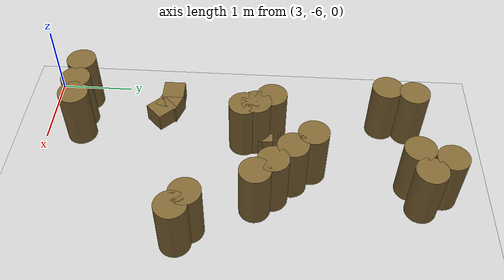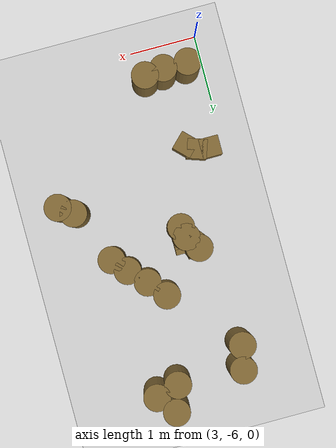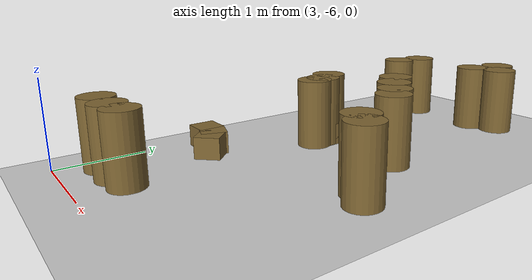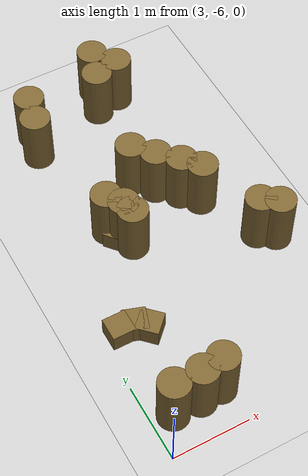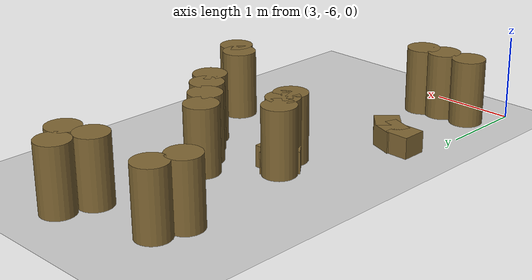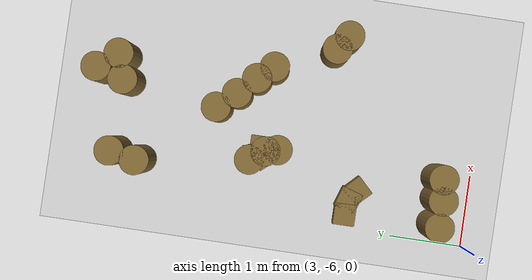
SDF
<sdf version="1.7">
 <world name="default">
  <model name="ground_plane">
   <static>1</static>
   <link name="link">
    <collision name="collision">
     <geometry><plane><normal>0 0 1</normal><size>100 100</size></plane></geometry>
     <surface><friction><ode><mu>100</mu><mu2>50</mu2></ode></friction></surface>
    </collision>
    <visual name="visual">
     <cast_shadows>0</cast_shadows>
     <geometry><plane><normal>0 0 1</normal><size>100 100</size></plane></geometry>
     <material>
      <script><uri>file://media/materials/scripts/gazebo.material</uri><name>Gazebo/Grey</name></script>
     </material>
    </visual>
   </link>
  </model>
  <model name="mini_cylinder_0_clone_0_clone_clone_clone_clone_9">
   <link name="link">
    <inertial>
     <mass>1</mass>
     <inertia><ixx>0.145833</ixx><ixy>0</ixy><ixz>0</ixz><iyy>0.145833</iyy><iyz>0</iyz><izz>0.125</izz></inertia>
    </inertial>
    <visual name="visual">
     <geometry><cylinder><radius>0.2</radius><length>0.8</length></cylinder></geometry>
     <material>
      <script><name>Gazebo/Grey</name><uri>file://media/materials/scripts/gazebo.material</uri></script>
      <shader type="vertex"><normal_map>__default__</normal_map></shader>
      <ambient>0.5 0.4 0.2 1</ambient>
      <diffuse>0.7 0.7 0.7 1</diffuse>
      <specular>0.01 0.01 0.01 1</specular>
      <emissive>0 0 0 1</emissive>
     </material>
    </visual>
    <collision name="collision">
     <geometry><cylinder><radius>0.2</radius><length>0.8</length></cylinder></geometry>
     <surface>
      <friction>
       <ode><mu>1</mu><mu2>1</mu2><fdir1>0 0 0</fdir1><slip1>0</slip1><slip2>0</slip2></ode>
       <torsional>
        <coefficient>1</coefficient>
        <patch_radius>0</patch_radius>
        <surface_radius>0</surface_radius>
        <use_patch_radius>1</use_patch_radius>
        <ode><slip>0</slip></ode>
       </torsional>
      </friction>
      <bounce><restitution_coefficient>0</restitution_coefficient><threshold>1e+06</threshold></bounce>
      <contact>
       <collide_without_contact>0</collide_without_contact>
       <collide_without_contact_bitmask>1</collide_without_contact_bitmask>
       <collide_bitmask>1</collide_bitmask>
       <ode>
        <soft_cfm>0</soft_cfm>
        <soft_erp>0.2</soft_erp>
        <kp>1e+13</kp>
        <kd>1</kd>
        <max_vel>0.01</max_vel>
        <min_depth>0</min_depth>
       </ode>
       <bullet>
        <split_impulse>1</split_impulse>
        <split_impulse_penetration_threshold>-0.01</split_impulse_penetration_threshold>
        <soft_cfm>0</soft_cfm>
        <soft_erp>0.2</soft_erp>
        <kp>1e+13</kp>
        <kd>1</kd>
       </bullet>
      </contact>
     </surface>
    </collision>
   </link>
   <static>1</static>
   <pose>3.56983 -1.38381 0.4 0 -0 0</pose>
  </model>
  <model name="mini_cylinder_0_clone_0_clone_clone_clone_clone_10">
   <link name="link">
    <inertial>
     <mass>1</mass>
     <inertia><ixx>0.145833</ixx><ixy>0</ixy><ixz>0</ixz><iyy>0.145833</iyy><iyz>0</iyz><izz>0.125</izz></inertia>
    </inertial>
    <visual name="visual">
     <geometry><cylinder><radius>0.2</radius><length>0.8</length></cylinder></geometry>
     <material>
      <script><name>Gazebo/Grey</name><uri>file://media/materials/scripts/gazebo.material</uri></script>
      <shader type="vertex"><normal_map>__default__</normal_map></shader>
      <ambient>0.5 0.4 0.2 1</ambient>
      <diffuse>0.7 0.7 0.7 1</diffuse>
      <specular>0.01 0.01 0.01 1</specular>
      <emissive>0 0 0 1</emissive>
     </material>
    </visual>
    <collision name="collision">
     <geometry><cylinder><radius>0.2</radius><length>0.8</length></cylinder></geometry>
     <surface>
      <friction>
       <ode><mu>1</mu><mu2>1</mu2><fdir1>0 0 0</fdir1><slip1>0</slip1><slip2>0</slip2></ode>
       <torsional>
        <coefficient>1</coefficient>
        <patch_radius>0</patch_radius>
        <surface_radius>0</surface_radius>
        <use_patch_radius>1</use_patch_radius>
        <ode><slip>0</slip></ode>
       </torsional>
      </friction>
      <bounce><restitution_coefficient>0</restitution_coefficient><threshold>1e+06</threshold></bounce>
      <contact>
       <collide_without_contact>0</collide_without_contact>
       <collide_without_contact_bitmask>1</collide_without_contact_bitmask>
       <collide_bitmask>1</collide_bitmask>
       <ode>
        <soft_cfm>0</soft_cfm>
        <soft_erp>0.2</soft_erp>
        <kp>1e+13</kp>
        <kd>1</kd>
        <max_vel>0.01</max_vel>
        <min_depth>0</min_depth>
       </ode>
       <bullet>
        <split_impulse>1</split_impulse>
        <split_impulse_penetration_threshold>-0.01</split_impulse_penetration_threshold>
        <soft_cfm>0</soft_cfm>
        <soft_erp>0.2</soft_erp>
        <kp>1e+13</kp>
        <kd>1</kd>
       </bullet>
      </contact>
     </surface>
    </collision>
   </link>
   <static>1</static>
   <pose>3.64698 -1.03635 0.4 0 -0 0</pose>
  </model>
  <model name="mini_cylinder_0_clone_0_clone_clone_clone_clone_clone_23">
   <link name="link">
    <inertial>
     <mass>1</mass>
     <inertia><ixx>0.145833</ixx><ixy>0</ixy><ixz>0</ixz><iyy>0.145833</iyy><iyz>0</iyz><izz>0.125</izz></inertia>
    </inertial>
    <visual name="visual">
     <geometry><cylinder><radius>0.2</radius><length>0.8</length></cylinder></geometry>
     <material>
      <script><name>Gazebo/Grey</name><uri>file://media/materials/scripts/gazebo.material</uri></script>
      <shader type="vertex"><normal_map>__default__</normal_map></shader>
      <ambient>0.5 0.4 0.2 1</ambient>
      <diffuse>0.7 0.7 0.7 1</diffuse>
      <specular>0.01 0.01 0.01 1</specular>
      <emissive>0 0 0 1</emissive>
     </material>
    </visual>
    <collision name="collision">
     <geometry><cylinder><radius>0.2</radius><length>0.8</length></cylinder></geometry>
     <surface>
      <friction>
       <ode><mu>1</mu><mu2>1</mu2><fdir1>0 0 0</fdir1><slip1>0</slip1><slip2>0</slip2></ode>
       <torsional>
        <coefficient>1</coefficient>
        <patch_radius>0</patch_radius>
        <surface_radius>0</surface_radius>
        <use_patch_radius>1</use_patch_radius>
        <ode><slip>0</slip></ode>
       </torsional>
      </friction>
      <bounce><restitution_coefficient>0</restitution_coefficient><threshold>1e+06</threshold></bounce>
      <contact>
       <collide_without_contact>0</collide_without_contact>
       <collide_without_contact_bitmask>1</collide_without_contact_bitmask>
       <collide_bitmask>1</collide_bitmask>
       <ode>
        <soft_cfm>0</soft_cfm>
        <soft_erp>0.2</soft_erp>
        <kp>1e+13</kp>
        <kd>1</kd>
        <max_vel>0.01</max_vel>
        <min_depth>0</min_depth>
       </ode>
       <bullet>
        <split_impulse>1</split_impulse>
        <split_impulse_penetration_threshold>-0.01</split_impulse_penetration_threshold>
        <soft_cfm>0</soft_cfm>
        <soft_erp>0.2</soft_erp>
        <kp>1e+13</kp>
        <kd>1</kd>
       </bullet>
      </contact>
     </surface>
    </collision>
   </link>
   <static>1</static>
   <pose>4.88511 -2.84859 0.4 0 -0 0</pose>
  </model>
  <model name="mini_cylinder_0_clone_0_clone_clone_clone_clone_clone_24">
   <link name="link">
    <inertial>
     <mass>1</mass>
     <inertia><ixx>0.145833</ixx><ixy>0</ixy><ixz>0</ixz><iyy>0.145833</iyy><iyz>0</iyz><izz>0.125</izz></inertia>
    </inertial>
    <visual name="visual">
     <geometry><cylinder><radius>0.2</radius><length>0.8</length></cylinder></geometry>
     <material>
      <script><name>Gazebo/Grey</name><uri>file://media/materials/scripts/gazebo.material</uri></script>
      <shader type="vertex"><normal_map>__default__</normal_map></shader>
      <ambient>0.5 0.4 0.2 1</ambient>
      <diffuse>0.7 0.7 0.7 1</diffuse>
      <specular>0.01 0.01 0.01 1</specular>
      <emissive>0 0 0 1</emissive>
     </material>
    </visual>
    <collision name="collision">
     <geometry><cylinder><radius>0.2</radius><length>0.8</length></cylinder></geometry>
     <surface>
      <friction>
       <ode><mu>1</mu><mu2>1</mu2><fdir1>0 0 0</fdir1><slip1>0</slip1><slip2>0</slip2></ode>
       <torsional>
        <coefficient>1</coefficient>
        <patch_radius>0</patch_radius>
        <surface_radius>0</surface_radius>
        <use_patch_radius>1</use_patch_radius>
        <ode><slip>0</slip></ode>
       </torsional>
      </friction>
      <bounce><restitution_coefficient>0</restitution_coefficient><threshold>1e+06</threshold></bounce>
      <contact>
       <collide_without_contact>0</collide_without_contact>
       <collide_without_contact_bitmask>1</collide_without_contact_bitmask>
       <collide_bitmask>1</collide_bitmask>
       <ode>
        <soft_cfm>0</soft_cfm>
        <soft_erp>0.2</soft_erp>
        <kp>1e+13</kp>
        <kd>1</kd>
        <max_vel>0.01</max_vel>
        <min_depth>0</min_depth>
       </ode>
       <bullet>
        <split_impulse>1</split_impulse>
        <split_impulse_penetration_threshold>-0.01</split_impulse_penetration_threshold>
        <soft_cfm>0</soft_cfm>
        <soft_erp>0.2</soft_erp>
        <kp>1e+13</kp>
        <kd>1</kd>
       </bullet>
      </contact>
     </surface>
    </collision>
   </link>
   <static>1</static>
   <pose>4.64919 -2.61266 0.4 0 -0 0</pose>
  </model>
  <model name="mini_cylinder_0_clone_0_clone_clone_clone_clone_clone_25">
   <link name="link">
    <inertial>
     <mass>1</mass>
     <inertia><ixx>0.145833</ixx><ixy>0</ixy><ixz>0</ixz><iyy>0.145833</iyy><iyz>0</iyz><izz>0.125</izz></inertia>
    </inertial>
    <visual name="visual">
     <geometry><cylinder><radius>0.2</radius><length>0.8</length></cylinder></geometry>
     <material>
      <script><name>Gazebo/Grey</name><uri>file://media/materials/scripts/gazebo.material</uri></script>
      <shader type="vertex"><normal_map>__default__</normal_map></shader>
      <ambient>0.5 0.4 0.2 1</ambient>
      <diffuse>0.7 0.7 0.7 1</diffuse>
      <specular>0.01 0.01 0.01 1</specular>
      <emissive>0 0 0 1</emissive>
     </material>
    </visual>
    <collision name="collision">
     <geometry><cylinder><radius>0.2</radius><length>0.8</length></cylinder></geometry>
     <surface>
      <friction>
       <ode><mu>1</mu><mu2>1</mu2><fdir1>0 0 0</fdir1><slip1>0</slip1><slip2>0</slip2></ode>
       <torsional>
        <coefficient>1</coefficient>
        <patch_radius>0</patch_radius>
        <surface_radius>0</surface_radius>
        <use_patch_radius>1</use_patch_radius>
        <ode><slip>0</slip></ode>
       </torsional>
      </friction>
      <bounce><restitution_coefficient>0</restitution_coefficient><threshold>1e+06</threshold></bounce>
      <contact>
       <collide_without_contact>0</collide_without_contact>
       <collide_without_contact_bitmask>1</collide_without_contact_bitmask>
       <collide_bitmask>1</collide_bitmask>
       <ode>
        <soft_cfm>0</soft_cfm>
        <soft_erp>0.2</soft_erp>
        <kp>1e+13</kp>
        <kd>1</kd>
        <max_vel>0.01</max_vel>
        <min_depth>0</min_depth>
       </ode>
       <bullet>
        <split_impulse>1</split_impulse>
        <split_impulse_penetration_threshold>-0.01</split_impulse_penetration_threshold>
        <soft_cfm>0</soft_cfm>
        <soft_erp>0.2</soft_erp>
        <kp>1e+13</kp>
        <kd>1</kd>
       </bullet>
      </contact>
     </surface>
    </collision>
   </link>
   <static>1</static>
   <pose>4.42899 -2.36101 0.4 0 -0 0</pose>
  </model>
  <model name="mini_cylinder_0_clone_0_clone_clone_clone_clone_clone_30">
   <link name="link">
    <inertial>
     <mass>1</mass>
     <inertia><ixx>0.145833</ixx><ixy>0</ixy><ixz>0</ixz><iyy>0.145833</iyy><iyz>0</iyz><izz>0.125</izz></inertia>
    </inertial>
    <visual name="visual">
     <geometry><cylinder><radius>0.2</radius><length>0.8</length></cylinder></geometry>
     <material>
      <script><name>Gazebo/Grey</name><uri>file://media/materials/scripts/gazebo.material</uri></script>
      <shader type="vertex"><normal_map>__default__</normal_map></shader>
      <ambient>0.5 0.4 0.2 1</ambient>
      <diffuse>0.7 0.7 0.7 1</diffuse>
      <specular>0.01 0.01 0.01 1</specular>
      <emissive>0 0 0 1</emissive>
     </material>
    </visual>
    <collision name="collision">
     <geometry><cylinder><radius>0.2</radius><length>0.8</length></cylinder></geometry>
     <surface>
      <friction>
       <ode><mu>1</mu><mu2>1</mu2><fdir1>0 0 0</fdir1><slip1>0</slip1><slip2>0</slip2></ode>
       <torsional>
        <coefficient>1</coefficient>
        <patch_radius>0</patch_radius>
        <surface_radius>0</surface_radius>
        <use_patch_radius>1</use_patch_radius>
        <ode><slip>0</slip></ode>
       </torsional>
      </friction>
      <bounce><restitution_coefficient>0</restitution_coefficient><threshold>1e+06</threshold></bounce>
      <contact>
       <collide_without_contact>0</collide_without_contact>
       <collide_without_contact_bitmask>1</collide_without_contact_bitmask>
       <collide_bitmask>1</collide_bitmask>
       <ode>
        <soft_cfm>0</soft_cfm>
        <soft_erp>0.2</soft_erp>
        <kp>1e+13</kp>
        <kd>1</kd>
        <max_vel>0.01</max_vel>
        <min_depth>0</min_depth>
       </ode>
       <bullet>
        <split_impulse>1</split_impulse>
        <split_impulse_penetration_threshold>-0.01</split_impulse_penetration_threshold>
        <soft_cfm>0</soft_cfm>
        <soft_erp>0.2</soft_erp>
        <kp>1e+13</kp>
        <kd>1</kd>
       </bullet>
      </contact>
     </surface>
    </collision>
   </link>
   <static>1</static>
   <pose>3.91023 -5.50694 0.4 0 -0 0</pose>
  </model>
  <model name="mini_cylinder_0_clone_0_clone_clone_clone_clone_clone_31">
   <link name="link">
    <inertial>
     <mass>1</mass>
     <inertia><ixx>0.145833</ixx><ixy>0</ixy><ixz>0</ixz><iyy>0.145833</iyy><iyz>0</iyz><izz>0.125</izz></inertia>
    </inertial>
    <visual name="visual">
     <geometry><cylinder><radius>0.2</radius><length>0.8</length></cylinder></geometry>
     <material>
      <script><name>Gazebo/Grey</name><uri>file://media/materials/scripts/gazebo.material</uri></script>
      <shader type="vertex"><normal_map>__default__</normal_map></shader>
      <ambient>0.5 0.4 0.2 1</ambient>
      <diffuse>0.7 0.7 0.7 1</diffuse>
      <specular>0.01 0.01 0.01 1</specular>
      <emissive>0 0 0 1</emissive>
     </material>
    </visual>
    <collision name="collision">
     <geometry><cylinder><radius>0.2</radius><length>0.8</length></cylinder></geometry>
     <surface>
      <friction>
       <ode><mu>1</mu><mu2>1</mu2><fdir1>0 0 0</fdir1><slip1>0</slip1><slip2>0</slip2></ode>
       <torsional>
        <coefficient>1</coefficient>
        <patch_radius>0</patch_radius>
        <surface_radius>0</surface_radius>
        <use_patch_radius>1</use_patch_radius>
        <ode><slip>0</slip></ode>
       </torsional>
      </friction>
      <bounce><restitution_coefficient>0</restitution_coefficient><threshold>1e+06</threshold></bounce>
      <contact>
       <collide_without_contact>0</collide_without_contact>
       <collide_without_contact_bitmask>1</collide_without_contact_bitmask>
       <collide_bitmask>1</collide_bitmask>
       <ode>
        <soft_cfm>0</soft_cfm>
        <soft_erp>0.2</soft_erp>
        <kp>1e+13</kp>
        <kd>1</kd>
        <max_vel>0.01</max_vel>
        <min_depth>0</min_depth>
       </ode>
       <bullet>
        <split_impulse>1</split_impulse>
        <split_impulse_penetration_threshold>-0.01</split_impulse_penetration_threshold>
        <soft_cfm>0</soft_cfm>
        <soft_erp>0.2</soft_erp>
        <kp>1e+13</kp>
        <kd>1</kd>
       </bullet>
      </contact>
     </surface>
    </collision>
   </link>
   <static>1</static>
   <pose>3.62712 -5.5384 0.4 0 -0 0</pose>
  </model>
  <model name="mini_cylinder_0_clone_0_clone_clone_clone_clone_clone_32">
   <link name="link">
    <inertial>
     <mass>1</mass>
     <inertia><ixx>0.145833</ixx><ixy>0</ixy><ixz>0</ixz><iyy>0.145833</iyy><iyz>0</iyz><izz>0.125</izz></inertia>
    </inertial>
    <visual name="visual">
     <geometry><cylinder><radius>0.2</radius><length>0.8</length></cylinder></geometry>
     <material>
      <script><name>Gazebo/Grey</name><uri>file://media/materials/scripts/gazebo.material</uri></script>
      <shader type="vertex"><normal_map>__default__</normal_map></shader>
      <ambient>0.5 0.4 0.2 1</ambient>
      <diffuse>0.7 0.7 0.7 1</diffuse>
      <specular>0.01 0.01 0.01 1</specular>
      <emissive>0 0 0 1</emissive>
     </material>
    </visual>
    <collision name="collision">
     <geometry><cylinder><radius>0.2</radius><length>0.8</length></cylinder></geometry>
     <surface>
      <friction>
       <ode><mu>1</mu><mu2>1</mu2><fdir1>0 0 0</fdir1><slip1>0</slip1><slip2>0</slip2></ode>
       <torsional>
        <coefficient>1</coefficient>
        <patch_radius>0</patch_radius>
        <surface_radius>0</surface_radius>
        <use_patch_radius>1</use_patch_radius>
        <ode><slip>0</slip></ode>
       </torsional>
      </friction>
      <bounce><restitution_coefficient>0</restitution_coefficient><threshold>1e+06</threshold></bounce>
      <contact>
       <collide_without_contact>0</collide_without_contact>
       <collide_without_contact_bitmask>1</collide_without_contact_bitmask>
       <collide_bitmask>1</collide_bitmask>
       <ode>
        <soft_cfm>0</soft_cfm>
        <soft_erp>0.2</soft_erp>
        <kp>1e+13</kp>
        <kd>1</kd>
        <max_vel>0.01</max_vel>
        <min_depth>0</min_depth>
       </ode>
       <bullet>
        <split_impulse>1</split_impulse>
        <split_impulse_penetration_threshold>-0.01</split_impulse_penetration_threshold>
        <soft_cfm>0</soft_cfm>
        <soft_erp>0.2</soft_erp>
        <kp>1e+13</kp>
        <kd>1</kd>
       </bullet>
      </contact>
     </surface>
    </collision>
   </link>
   <static>1</static>
   <pose>3.26564 -5.5384 0.4 0 -0 0</pose>
  </model>
  <model name="mini_box_0.3_clone_15">
   <link name="link">
    <inertial>
     <mass>1</mass>
     <inertia>
      <ixx>0.166667</ixx>
      <ixy>0</ixy>
      <ixz>0</ixz>
      <iyy>0.166667</iyy>
      <iyz>0</iyz>
      <izz>0.166667</izz>
     </inertia>
    </inertial>
    <visual name="visual">
     <geometry><box><size>0.3 0.3 0.5</size></box></geometry>
     <material>
      <script><name>Gazebo/Grey</name><uri>file://media/materials/scripts/gazebo.material</uri></script>
      <shader type="vertex"><normal_map>__default__</normal_map></shader>
      <ambient>0.5 0.4 0.2 1</ambient>
      <diffuse>0.7 0.7 0.7 1</diffuse>
      <specular>0.01 0.01 0.01 1</specular>
      <emissive>0 0 0 1</emissive>
     </material>
    </visual>
    <collision name="collision">
     <geometry><box><size>0.3 0.3 0.3</size></box></geometry>
     <surface>
      <friction>
       <ode><mu>1</mu><mu2>1</mu2><fdir1>0 0 0</fdir1><slip1>0</slip1><slip2>0</slip2></ode>
       <torsional>
        <coefficient>1</coefficient>
        <patch_radius>0</patch_radius>
        <surface_radius>0</surface_radius>
        <use_patch_radius>1</use_patch_radius>
        <ode><slip>0</slip></ode>
       </torsional>
      </friction>
      <bounce><restitution_coefficient>0</restitution_coefficient><threshold>1e+06</threshold></bounce>
      <contact>
       <collide_without_contact>0</collide_without_contact>
       <collide_without_contact_bitmask>1</collide_without_contact_bitmask>
       <collide_bitmask>1</collide_bitmask>
       <ode>
        <soft_cfm>0</soft_cfm>
        <soft_erp>0.2</soft_erp>
        <kp>1e+13</kp>
        <kd>1</kd>
        <max_vel>0.01</max_vel>
        <min_depth>0</min_depth>
       </ode>
       <bullet>
        <split_impulse>1</split_impulse>
        <split_impulse_penetration_threshold>-0.01</split_impulse_penetration_threshold>
        <soft_cfm>0</soft_cfm>
        <soft_erp>0.2</soft_erp>
        <kp>1e+13</kp>
        <kd>1</kd>
       </bullet>
      </contact>
     </surface>
    </collision>
   </link>
   <static>1</static>
   <pose>3.98336 -3.01584 0 0 -0 0</pose>
  </model>
  <model name="mini_box_0.3_clone_16">
   <link name="link">
    <inertial>
     <mass>1</mass>
     <inertia>
      <ixx>0.166667</ixx>
      <ixy>0</ixy>
      <ixz>0</ixz>
      <iyy>0.166667</iyy>
      <iyz>0</iyz>
      <izz>0.166667</izz>
     </inertia>
    </inertial>
    <visual name="visual">
     <geometry><box><size>0.3 0.3 0.5</size></box></geometry>
     <material>
      <script><name>Gazebo/Grey</name><uri>file://media/materials/scripts/gazebo.material</uri></script>
      <shader type="vertex"><normal_map>__default__</normal_map></shader>
      <ambient>0.5 0.4 0.2 1</ambient>
      <diffuse>0.7 0.7 0.7 1</diffuse>
      <specular>0.01 0.01 0.01 1</specular>
      <emissive>0 0 0 1</emissive>
     </material>
    </visual>
    <collision name="collision">
     <geometry><box><size>0.3 0.3 0.3</size></box></geometry>
     <surface>
      <friction>
       <ode><mu>1</mu><mu2>1</mu2><fdir1>0 0 0</fdir1><slip1>0</slip1><slip2>0</slip2></ode>
       <torsional>
        <coefficient>1</coefficient>
        <patch_radius>0</patch_radius>
        <surface_radius>0</surface_radius>
        <use_patch_radius>1</use_patch_radius>
        <ode><slip>0</slip></ode>
       </torsional>
      </friction>
      <bounce><restitution_coefficient>0</restitution_coefficient><threshold>1e+06</threshold></bounce>
      <contact>
       <collide_without_contact>0</collide_without_contact>
       <collide_without_contact_bitmask>1</collide_without_contact_bitmask>
       <collide_bitmask>1</collide_bitmask>
       <ode>
        <soft_cfm>0</soft_cfm>
        <soft_erp>0.2</soft_erp>
        <kp>1e+13</kp>
        <kd>1</kd>
        <max_vel>0.01</max_vel>
        <min_depth>0</min_depth>
       </ode>
       <bullet>
        <split_impulse>1</split_impulse>
        <split_impulse_penetration_threshold>-0.01</split_impulse_penetration_threshold>
        <soft_cfm>0</soft_cfm>
        <soft_erp>0.2</soft_erp>
        <kp>1e+13</kp>
        <kd>1</kd>
       </bullet>
      </contact>
     </surface>
    </collision>
   </link>
   <static>1</static>
   <pose>3.98336 -3.09861 0 0 -0 0</pose>
  </model>
  <model name="mini_box_0.3_clone_17">
   <link name="link">
    <inertial>
     <mass>1</mass>
     <inertia>
      <ixx>0.166667</ixx>
      <ixy>0</ixy>
      <ixz>0</ixz>
      <iyy>0.166667</iyy>
      <iyz>0</iyz>
      <izz>0.166667</izz>
     </inertia>
    </inertial>
    <visual name="visual">
     <geometry><box><size>0.3 0.3 0.5</size></box></geometry>
     <material>
      <script><name>Gazebo/Grey</name><uri>file://media/materials/scripts/gazebo.material</uri></script>
      <shader type="vertex"><normal_map>__default__</normal_map></shader>
      <ambient>0.5 0.4 0.2 1</ambient>
      <diffuse>0.7 0.7 0.7 1</diffuse>
      <specular>0.01 0.01 0.01 1</specular>
      <emissive>0 0 0 1</emissive>
     </material>
    </visual>
    <collision name="collision">
     <geometry><box><size>0.3 0.3 0.3</size></box></geometry>
     <surface>
      <friction>
       <ode><mu>1</mu><mu2>1</mu2><fdir1>0 0 0</fdir1><slip1>0</slip1><slip2>0</slip2></ode>
       <torsional>
        <coefficient>1</coefficient>
        <patch_radius>0</patch_radius>
        <surface_radius>0</surface_radius>
        <use_patch_radius>1</use_patch_radius>
        <ode><slip>0</slip></ode>
       </torsional>
      </friction>
      <bounce><restitution_coefficient>0</restitution_coefficient><threshold>1e+06</threshold></bounce>
      <contact>
       <collide_without_contact>0</collide_without_contact>
       <collide_without_contact_bitmask>1</collide_without_contact_bitmask>
       <collide_bitmask>1</collide_bitmask>
       <ode>
        <soft_cfm>0</soft_cfm>
        <soft_erp>0.2</soft_erp>
        <kp>1e+13</kp>
        <kd>1</kd>
        <max_vel>0.01</max_vel>
        <min_depth>0</min_depth>
       </ode>
       <bullet>
        <split_impulse>1</split_impulse>
        <split_impulse_penetration_threshold>-0.01</split_impulse_penetration_threshold>
        <soft_cfm>0</soft_cfm>
        <soft_erp>0.2</soft_erp>
        <kp>1e+13</kp>
        <kd>1</kd>
       </bullet>
      </contact>
     </surface>
    </collision>
   </link>
   <static>1</static>
   <pose>3.81779 -2.91233 0 0 -0 0</pose>
  </model>
  <model name="mini_box_0.3_clone_18">
   <link name="link">
    <inertial>
     <mass>1</mass>
     <inertia>
      <ixx>0.166667</ixx>
      <ixy>0</ixy>
      <ixz>0</ixz>
      <iyy>0.166667</iyy>
      <iyz>0</iyz>
      <izz>0.166667</izz>
     </inertia>
    </inertial>
    <visual name="visual">
     <geometry><box><size>0.3 0.3 0.5</size></box></geometry>
     <material>
      <script><name>Gazebo/Grey</name><uri>file://media/materials/scripts/gazebo.material</uri></script>
      <shader type="vertex"><normal_map>__default__</normal_map></shader>
      <ambient>0.5 0.4 0.2 1</ambient>
      <diffuse>0.7 0.7 0.7 1</diffuse>
      <specular>0.01 0.01 0.01 1</specular>
      <emissive>0 0 0 1</emissive>
     </material>
    </visual>
    <collision name="collision">
     <geometry><box><size>0.3 0.3 0.3</size></box></geometry>
     <surface>
      <friction>
       <ode><mu>1</mu><mu2>1</mu2><fdir1>0 0 0</fdir1><slip1>0</slip1><slip2>0</slip2></ode>
       <torsional>
        <coefficient>1</coefficient>
        <patch_radius>0</patch_radius>
        <surface_radius>0</surface_radius>
        <use_patch_radius>1</use_patch_radius>
        <ode><slip>0</slip></ode>
       </torsional>
      </friction>
      <bounce><restitution_coefficient>0</restitution_coefficient><threshold>1e+06</threshold></bounce>
      <contact>
       <collide_without_contact>0</collide_without_contact>
       <collide_without_contact_bitmask>1</collide_without_contact_bitmask>
       <collide_bitmask>1</collide_bitmask>
       <ode>
        <soft_cfm>0</soft_cfm>
        <soft_erp>0.2</soft_erp>
        <kp>1e+13</kp>
        <kd>1</kd>
        <max_vel>0.01</max_vel>
        <min_depth>0</min_depth>
       </ode>
       <bullet>
        <split_impulse>1</split_impulse>
        <split_impulse_penetration_threshold>-0.01</split_impulse_penetration_threshold>
        <soft_cfm>0</soft_cfm>
        <soft_erp>0.2</soft_erp>
        <kp>1e+13</kp>
        <kd>1</kd>
       </bullet>
      </contact>
     </surface>
    </collision>
   </link>
   <static>1</static>
   <pose>3.85919 -3.07779 0 0 -0 0.70049</pose>
  </model>
  <model name="mini_box_0.3_clone_12_clone_1">
   <link name="link">
    <inertial>
     <mass>1</mass>
     <inertia>
      <ixx>0.166667</ixx>
      <ixy>0</ixy>
      <ixz>0</ixz>
      <iyy>0.166667</iyy>
      <iyz>0</iyz>
      <izz>0.166667</izz>
     </inertia>
    </inertial>
    <visual name="visual">
     <geometry><box><size>0.3 0.3 0.5</size></box></geometry>
     <material>
      <script><name>Gazebo/Grey</name><uri>file://media/materials/scripts/gazebo.material</uri></script>
      <shader type="vertex"><normal_map>__default__</normal_map></shader>
      <ambient>0.5 0.4 0.2 1</ambient>
      <diffuse>0.7 0.7 0.7 1</diffuse>
      <specular>0.01 0.01 0.01 1</specular>
      <emissive>0 0 0 1</emissive>
     </material>
    </visual>
    <collision name="collision">
     <geometry><box><size>0.3 0.3 0.3</size></box></geometry>
     <surface>
      <friction>
       <ode><mu>1</mu><mu2>1</mu2><fdir1>0 0 0</fdir1><slip1>0</slip1><slip2>0</slip2></ode>
       <torsional>
        <coefficient>1</coefficient>
        <patch_radius>0</patch_radius>
        <surface_radius>0</surface_radius>
        <use_patch_radius>1</use_patch_radius>
        <ode><slip>0</slip></ode>
       </torsional>
      </friction>
      <bounce><restitution_coefficient>0</restitution_coefficient><threshold>1e+06</threshold></bounce>
      <contact>
       <collide_without_contact>0</collide_without_contact>
       <collide_without_contact_bitmask>1</collide_without_contact_bitmask>
       <collide_bitmask>1</collide_bitmask>
       <ode>
        <soft_cfm>0</soft_cfm>
        <soft_erp>0.2</soft_erp>
        <kp>1e+13</kp>
        <kd>1</kd>
        <max_vel>0.01</max_vel>
        <min_depth>0</min_depth>
       </ode>
       <bullet>
        <split_impulse>1</split_impulse>
        <split_impulse_penetration_threshold>-0.01</split_impulse_penetration_threshold>
        <soft_cfm>0</soft_cfm>
        <soft_erp>0.2</soft_erp>
        <kp>1e+13</kp>
        <kd>1</kd>
       </bullet>
      </contact>
     </surface>
    </collision>
   </link>
   <static>1</static>
   <pose>3.2222 -4.30611 0 0 -0 0</pose>
  </model>
  <model name="mini_box_0.3_clone_12_clone_2">
   <link name="link">
    <inertial>
     <mass>1</mass>
     <inertia>
      <ixx>0.166667</ixx>
      <ixy>0</ixy>
      <ixz>0</ixz>
      <iyy>0.166667</iyy>
      <iyz>0</iyz>
      <izz>0.166667</izz>
     </inertia>
    </inertial>
    <visual name="visual">
     <geometry><box><size>0.3 0.3 0.5</size></box></geometry>
     <material>
      <script><name>Gazebo/Grey</name><uri>file://media/materials/scripts/gazebo.material</uri></script>
      <shader type="vertex"><normal_map>__default__</normal_map></shader>
      <ambient>0.5 0.4 0.2 1</ambient>
      <diffuse>0.7 0.7 0.7 1</diffuse>
      <specular>0.01 0.01 0.01 1</specular>
      <emissive>0 0 0 1</emissive>
     </material>
    </visual>
    <collision name="collision">
     <geometry><box><size>0.3 0.3 0.3</size></box></geometry>
     <surface>
      <friction>
       <ode><mu>1</mu><mu2>1</mu2><fdir1>0 0 0</fdir1><slip1>0</slip1><slip2>0</slip2></ode>
       <torsional>
        <coefficient>1</coefficient>
        <patch_radius>0</patch_radius>
        <surface_radius>0</surface_radius>
        <use_patch_radius>1</use_patch_radius>
        <ode><slip>0</slip></ode>
       </torsional>
      </friction>
      <bounce><restitution_coefficient>0</restitution_coefficient><threshold>1e+06</threshold></bounce>
      <contact>
       <collide_without_contact>0</collide_without_contact>
       <collide_without_contact_bitmask>1</collide_without_contact_bitmask>
       <collide_bitmask>1</collide_bitmask>
       <ode>
        <soft_cfm>0</soft_cfm>
        <soft_erp>0.2</soft_erp>
        <kp>1e+13</kp>
        <kd>1</kd>
        <max_vel>0.01</max_vel>
        <min_depth>0</min_depth>
       </ode>
       <bullet>
        <split_impulse>1</split_impulse>
        <split_impulse_penetration_threshold>-0.01</split_impulse_penetration_threshold>
        <soft_cfm>0</soft_cfm>
        <soft_erp>0.2</soft_erp>
        <kp>1e+13</kp>
        <kd>1</kd>
       </bullet>
      </contact>
     </surface>
    </collision>
   </link>
   <static>1</static>
   <pose>3.42457 -4.33048 0 0 0 -0.327272</pose>
  </model>
  <model name="mini_box_0.3_clone_12_clone_3">
   <link name="link">
    <inertial>
     <mass>1</mass>
     <inertia>
      <ixx>0.166667</ixx>
      <ixy>0</ixy>
      <ixz>0</ixz>
      <iyy>0.166667</iyy>
      <iyz>0</iyz>
      <izz>0.166667</izz>
     </inertia>
    </inertial>
    <visual name="visual">
     <geometry><box><size>0.3 0.3 0.5</size></box></geometry>
     <material>
      <script><name>Gazebo/Grey</name><uri>file://media/materials/scripts/gazebo.material</uri></script>
      <shader type="vertex"><normal_map>__default__</normal_map></shader>
      <ambient>0.5 0.4 0.2 1</ambient>
      <diffuse>0.7 0.7 0.7 1</diffuse>
      <specular>0.01 0.01 0.01 1</specular>
      <emissive>0 0 0 1</emissive>
     </material>
    </visual>
    <collision name="collision">
     <geometry><box><size>0.3 0.3 0.3</size></box></geometry>
     <surface>
      <friction>
       <ode><mu>1</mu><mu2>1</mu2><fdir1>0 0 0</fdir1><slip1>0</slip1><slip2>0</slip2></ode>
       <torsional>
        <coefficient>1</coefficient>
        <patch_radius>0</patch_radius>
        <surface_radius>0</surface_radius>
        <use_patch_radius>1</use_patch_radius>
        <ode><slip>0</slip></ode>
       </torsional>
      </friction>
      <bounce><restitution_coefficient>0</restitution_coefficient><threshold>1e+06</threshold></bounce>
      <contact>
       <collide_without_contact>0</collide_without_contact>
       <collide_without_contact_bitmask>1</collide_without_contact_bitmask>
       <collide_bitmask>1</collide_bitmask>
       <ode>
        <soft_cfm>0</soft_cfm>
        <soft_erp>0.2</soft_erp>
        <kp>1e+13</kp>
        <kd>1</kd>
        <max_vel>0.01</max_vel>
        <min_depth>0</min_depth>
       </ode>
       <bullet>
        <split_impulse>1</split_impulse>
        <split_impulse_penetration_threshold>-0.01</split_impulse_penetration_threshold>
        <soft_cfm>0</soft_cfm>
        <soft_erp>0.2</soft_erp>
        <kp>1e+13</kp>
        <kd>1</kd>
       </bullet>
      </contact>
     </surface>
    </collision>
   </link>
   <static>1</static>
   <pose>3.56803 -4.43362 0 0 0 -0.789415</pose>
  </model>
  <model name="mini_cylinder_0_clone_0_clone_clone_clone_clone_clone_49_clone_25">
   <link name="link">
    <inertial>
     <mass>1</mass>
     <inertia><ixx>0.145833</ixx><ixy>0</ixy><ixz>0</ixz><iyy>0.145833</iyy><iyz>0</iyz><izz>0.125</izz></inertia>
    </inertial>
    <visual name="visual">
     <geometry><cylinder><radius>0.2</radius><length>0.8</length></cylinder></geometry>
     <material>
      <script><name>Gazebo/Grey</name><uri>file://media/materials/scripts/gazebo.material</uri></script>
      <shader type="vertex"><normal_map>__default__</normal_map></shader>
      <ambient>0.5 0.4 0.2 1</ambient>
      <diffuse>0.7 0.7 0.7 1</diffuse>
      <specular>0.01 0.01 0.01 1</specular>
      <emissive>0 0 0 1</emissive>
     </material>
    </visual>
    <collision name="collision">
     <geometry><cylinder><radius>0.2</radius><length>0.8</length></cylinder></geometry>
     <surface>
      <friction>
       <ode><mu>1</mu><mu2>1</mu2><fdir1>0 0 0</fdir1><slip1>0</slip1><slip2>0</slip2></ode>
       <torsional>
        <coefficient>1</coefficient>
        <patch_radius>0</patch_radius>
        <surface_radius>0</surface_radius>
        <use_patch_radius>1</use_patch_radius>
        <ode><slip>0</slip></ode>
       </torsional>
      </friction>
      <bounce><restitution_coefficient>0</restitution_coefficient><threshold>1e+06</threshold></bounce>
      <contact>
       <collide_without_contact>0</collide_without_contact>
       <collide_without_contact_bitmask>1</collide_without_contact_bitmask>
       <collide_bitmask>1</collide_bitmask>
       <ode>
        <soft_cfm>0</soft_cfm>
        <soft_erp>0.2</soft_erp>
        <kp>1e+13</kp>
        <kd>1</kd>
        <max_vel>0.01</max_vel>
        <min_depth>0</min_depth>
       </ode>
       <bullet>
        <split_impulse>1</split_impulse>
        <split_impulse_penetration_threshold>-0.01</split_impulse_penetration_threshold>
        <soft_cfm>0</soft_cfm>
        <soft_erp>0.2</soft_erp>
        <kp>1e+13</kp>
        <kd>1</kd>
       </bullet>
      </contact>
     </surface>
    </collision>
   </link>
   <static>1</static>
   <pose>3.93912 -3.09781 0.4 0 -0 0</pose>
  </model>
  <model name="mini_cylinder_0_clone_0_clone_clone_clone_clone_clone_49_clone_26">
   <link name="link">
    <inertial>
     <mass>1</mass>
     <inertia><ixx>0.145833</ixx><ixy>0</ixy><ixz>0</ixz><iyy>0.145833</iyy><iyz>0</iyz><izz>0.125</izz></inertia>
    </inertial>
    <visual name="visual">
     <geometry><cylinder><radius>0.2</radius><length>0.8</length></cylinder></geometry>
     <material>
      <script><name>Gazebo/Grey</name><uri>file://media/materials/scripts/gazebo.material</uri></script>
      <shader type="vertex"><normal_map>__default__</normal_map></shader>
      <ambient>0.5 0.4 0.2 1</ambient>
      <diffuse>0.7 0.7 0.7 1</diffuse>
      <specular>0.01 0.01 0.01 1</specular>
      <emissive>0 0 0 1</emissive>
     </material>
    </visual>
    <collision name="collision">
     <geometry><cylinder><radius>0.2</radius><length>0.8</length></cylinder></geometry>
     <surface>
      <friction>
       <ode><mu>1</mu><mu2>1</mu2><fdir1>0 0 0</fdir1><slip1>0</slip1><slip2>0</slip2></ode>
       <torsional>
        <coefficient>1</coefficient>
        <patch_radius>0</patch_radius>
        <surface_radius>0</surface_radius>
        <use_patch_radius>1</use_patch_radius>
        <ode><slip>0</slip></ode>
       </torsional>
      </friction>
      <bounce><restitution_coefficient>0</restitution_coefficient><threshold>1e+06</threshold></bounce>
      <contact>
       <collide_without_contact>0</collide_without_contact>
       <collide_without_contact_bitmask>1</collide_without_contact_bitmask>
       <collide_bitmask>1</collide_bitmask>
       <ode>
        <soft_cfm>0</soft_cfm>
        <soft_erp>0.2</soft_erp>
        <kp>1e+13</kp>
        <kd>1</kd>
        <max_vel>0.01</max_vel>
        <min_depth>0</min_depth>
       </ode>
       <bullet>
        <split_impulse>1</split_impulse>
        <split_impulse_penetration_threshold>-0.01</split_impulse_penetration_threshold>
        <soft_cfm>0</soft_cfm>
        <soft_erp>0.2</soft_erp>
        <kp>1e+13</kp>
        <kd>1</kd>
       </bullet>
      </contact>
     </surface>
    </collision>
   </link>
   <static>1</static>
   <pose>3.80049 -2.89976 0.4 0 -0 0</pose>
  </model>
  <model name="mini_cylinder_0_clone_0_clone_clone_clone_clone_clone_49_clone_27">
   <link name="link">
    <inertial>
     <mass>1</mass>
     <inertia><ixx>0.145833</ixx><ixy>0</ixy><ixz>0</ixz><iyy>0.145833</iyy><iyz>0</iyz><izz>0.125</izz></inertia>
    </inertial>
    <visual name="visual">
     <geometry><cylinder><radius>0.2</radius><length>0.8</length></cylinder></geometry>
     <material>
      <script><name>Gazebo/Grey</name><uri>file://media/materials/scripts/gazebo.material</uri></script>
      <shader type="vertex"><normal_map>__default__</normal_map></shader>
      <ambient>0.5 0.4 0.2 1</ambient>
      <diffuse>0.7 0.7 0.7 1</diffuse>
      <specular>0.01 0.01 0.01 1</specular>
      <emissive>0 0 0 1</emissive>
     </material>
    </visual>
    <collision name="collision">
     <geometry><cylinder><radius>0.2</radius><length>0.8</length></cylinder></geometry>
     <surface>
      <friction>
       <ode><mu>1</mu><mu2>1</mu2><fdir1>0 0 0</fdir1><slip1>0</slip1><slip2>0</slip2></ode>
       <torsional>
        <coefficient>1</coefficient>
        <patch_radius>0</patch_radius>
        <surface_radius>0</surface_radius>
        <use_patch_radius>1</use_patch_radius>
        <ode><slip>0</slip></ode>
       </torsional>
      </friction>
      <bounce><restitution_coefficient>0</restitution_coefficient><threshold>1e+06</threshold></bounce>
      <contact>
       <collide_without_contact>0</collide_without_contact>
       <collide_without_contact_bitmask>1</collide_without_contact_bitmask>
       <collide_bitmask>1</collide_bitmask>
       <ode>
        <soft_cfm>0</soft_cfm>
        <soft_erp>0.2</soft_erp>
        <kp>1e+13</kp>
        <kd>1</kd>
        <max_vel>0.01</max_vel>
        <min_depth>0</min_depth>
       </ode>
       <bullet>
        <split_impulse>1</split_impulse>
        <split_impulse_penetration_threshold>-0.01</split_impulse_penetration_threshold>
        <soft_cfm>0</soft_cfm>
        <soft_erp>0.2</soft_erp>
        <kp>1e+13</kp>
        <kd>1</kd>
       </bullet>
      </contact>
     </surface>
    </collision>
   </link>
   <static>1</static>
   <pose>5.6225 -3.98902 0.4 0 -0 0</pose>
  </model>
  <model name="mini_cylinder_0_clone_0_clone_clone_clone_clone_clone_49_clone_28">
   <link name="link">
    <inertial>
     <mass>1</mass>
     <inertia><ixx>0.145833</ixx><ixy>0</ixy><ixz>0</ixz><iyy>0.145833</iyy><iyz>0</iyz><izz>0.125</izz></inertia>
    </inertial>
    <visual name="visual">
     <geometry><cylinder><radius>0.2</radius><length>0.8</length></cylinder></geometry>
     <material>
      <script><name>Gazebo/Grey</name><uri>file://media/materials/scripts/gazebo.material</uri></script>
      <shader type="vertex"><normal_map>__default__</normal_map></shader>
      <ambient>0.5 0.4 0.2 1</ambient>
      <diffuse>0.7 0.7 0.7 1</diffuse>
      <specular>0.01 0.01 0.01 1</specular>
      <emissive>0 0 0 1</emissive>
     </material>
    </visual>
    <collision name="collision">
     <geometry><cylinder><radius>0.2</radius><length>0.8</length></cylinder></geometry>
     <surface>
      <friction>
       <ode><mu>1</mu><mu2>1</mu2><fdir1>0 0 0</fdir1><slip1>0</slip1><slip2>0</slip2></ode>
       <torsional>
        <coefficient>1</coefficient>
        <patch_radius>0</patch_radius>
        <surface_radius>0</surface_radius>
        <use_patch_radius>1</use_patch_radius>
        <ode><slip>0</slip></ode>
       </torsional>
      </friction>
      <bounce><restitution_coefficient>0</restitution_coefficient><threshold>1e+06</threshold></bounce>
      <contact>
       <collide_without_contact>0</collide_without_contact>
       <collide_without_contact_bitmask>1</collide_without_contact_bitmask>
       <collide_bitmask>1</collide_bitmask>
       <ode>
        <soft_cfm>0</soft_cfm>
        <soft_erp>0.2</soft_erp>
        <kp>1e+13</kp>
        <kd>1</kd>
        <max_vel>0.01</max_vel>
        <min_depth>0</min_depth>
       </ode>
       <bullet>
        <split_impulse>1</split_impulse>
        <split_impulse_penetration_threshold>-0.01</split_impulse_penetration_threshold>
        <soft_cfm>0</soft_cfm>
        <soft_erp>0.2</soft_erp>
        <kp>1e+13</kp>
        <kd>1</kd>
       </bullet>
      </contact>
     </surface>
    </collision>
   </link>
   <static>1</static>
   <pose>5.42449 -3.85039 0.4 0 -0 0</pose>
  </model>
  <model name="mini_cylinder_0_clone_0_clone_clone_clone_clone_clone_49_clone_40">
   <link name="link">
    <inertial>
     <mass>1</mass>
     <inertia><ixx>0.145833</ixx><ixy>0</ixy><ixz>0</ixz><iyy>0.145833</iyy><iyz>0</iyz><izz>0.125</izz></inertia>
    </inertial>
    <visual name="visual">
     <geometry><cylinder><radius>0.2</radius><length>0.8</length></cylinder></geometry>
     <material>
      <script><name>Gazebo/Grey</name><uri>file://media/materials/scripts/gazebo.material</uri></script>
      <shader type="vertex"><normal_map>__default__</normal_map></shader>
      <ambient>0.5 0.4 0.2 1</ambient>
      <diffuse>0.7 0.7 0.7 1</diffuse>
      <specular>0.01 0.01 0.01 1</specular>
      <emissive>0 0 0 1</emissive>
     </material>
    </visual>
    <collision name="collision">
     <geometry><cylinder><radius>0.2</radius><length>0.8</length></cylinder></geometry>
     <surface>
      <friction>
       <ode><mu>1</mu><mu2>1</mu2><fdir1>0 0 0</fdir1><slip1>0</slip1><slip2>0</slip2></ode>
       <torsional>
        <coefficient>1</coefficient>
        <patch_radius>0</patch_radius>
        <surface_radius>0</surface_radius>
        <use_patch_radius>1</use_patch_radius>
        <ode><slip>0</slip></ode>
       </torsional>
      </friction>
      <bounce><restitution_coefficient>0</restitution_coefficient><threshold>1e+06</threshold></bounce>
      <contact>
       <collide_without_contact>0</collide_without_contact>
       <collide_without_contact_bitmask>1</collide_without_contact_bitmask>
       <collide_bitmask>1</collide_bitmask>
       <ode>
        <soft_cfm>0</soft_cfm>
        <soft_erp>0.2</soft_erp>
        <kp>1e+13</kp>
        <kd>1</kd>
        <max_vel>0.01</max_vel>
        <min_depth>0</min_depth>
       </ode>
       <bullet>
        <split_impulse>1</split_impulse>
        <split_impulse_penetration_threshold>-0.01</split_impulse_penetration_threshold>
        <soft_cfm>0</soft_cfm>
        <soft_erp>0.2</soft_erp>
        <kp>1e+13</kp>
        <kd>1</kd>
       </bullet>
      </contact>
     </surface>
    </collision>
   </link>
   <static>1</static>
   <pose>3.97873 -3.25625 0.4 0 -0 0</pose>
  </model>
  <model name="mini_cylinder_0_clone_0_clone_clone_clone_clone_clone_49_clone_45">
   <link name="link">
    <inertial>
     <mass>1</mass>
     <inertia><ixx>0.145833</ixx><ixy>0</ixy><ixz>0</ixz><iyy>0.145833</iyy><iyz>0</iyz><izz>0.125</izz></inertia>
    </inertial>
    <visual name="visual">
     <geometry><cylinder><radius>0.2</radius><length>0.8</length></cylinder></geometry>
     <material>
      <script><name>Gazebo/Grey</name><uri>file://media/materials/scripts/gazebo.material</uri></script>
      <shader type="vertex"><normal_map>__default__</normal_map></shader>
      <ambient>0.5 0.4 0.2 1</ambient>
      <diffuse>0.7 0.7 0.7 1</diffuse>
      <specular>0.01 0.01 0.01 1</specular>
      <emissive>0 0 0 1</emissive>
     </material>
    </visual>
    <collision name="collision">
     <geometry><cylinder><radius>0.2</radius><length>0.8</length></cylinder></geometry>
     <surface>
      <friction>
       <ode><mu>1</mu><mu2>1</mu2><fdir1>0 0 0</fdir1><slip1>0</slip1><slip2>0</slip2></ode>
       <torsional>
        <coefficient>1</coefficient>
        <patch_radius>0</patch_radius>
        <surface_radius>0</surface_radius>
        <use_patch_radius>1</use_patch_radius>
        <ode><slip>0</slip></ode>
       </torsional>
      </friction>
      <bounce><restitution_coefficient>0</restitution_coefficient><threshold>1e+06</threshold></bounce>
      <contact>
       <collide_without_contact>0</collide_without_contact>
       <collide_without_contact_bitmask>1</collide_without_contact_bitmask>
       <collide_bitmask>1</collide_bitmask>
       <ode>
        <soft_cfm>0</soft_cfm>
        <soft_erp>0.2</soft_erp>
        <kp>1e+13</kp>
        <kd>1</kd>
        <max_vel>0.01</max_vel>
        <min_depth>0</min_depth>
       </ode>
       <bullet>
        <split_impulse>1</split_impulse>
        <split_impulse_penetration_threshold>-0.01</split_impulse_penetration_threshold>
        <soft_cfm>0</soft_cfm>
        <soft_erp>0.2</soft_erp>
        <kp>1e+13</kp>
        <kd>1</kd>
       </bullet>
      </contact>
     </surface>
    </collision>
   </link>
   <static>1</static>
   <pose>4.94917 -0.978718 0.4 0 -0 0</pose>
  </model>
  <model name="mini_cylinder_0_clone_0_clone_clone_clone_clone_clone_49_clone_46">
   <link name="link">
    <inertial>
     <mass>1</mass>
     <inertia><ixx>0.145833</ixx><ixy>0</ixy><ixz>0</ixz><iyy>0.145833</iyy><iyz>0</iyz><izz>0.125</izz></inertia>
    </inertial>
    <visual name="visual">
     <geometry><cylinder><radius>0.2</radius><length>0.8</length></cylinder></geometry>
     <material>
      <script><name>Gazebo/Grey</name><uri>file://media/materials/scripts/gazebo.material</uri></script>
      <shader type="vertex"><normal_map>__default__</normal_map></shader>
      <ambient>0.5 0.4 0.2 1</ambient>
      <diffuse>0.7 0.7 0.7 1</diffuse>
      <specular>0.01 0.01 0.01 1</specular>
      <emissive>0 0 0 1</emissive>
     </material>
    </visual>
    <collision name="collision">
     <geometry><cylinder><radius>0.2</radius><length>0.8</length></cylinder></geometry>
     <surface>
      <friction>
       <ode><mu>1</mu><mu2>1</mu2><fdir1>0 0 0</fdir1><slip1>0</slip1><slip2>0</slip2></ode>
       <torsional>
        <coefficient>1</coefficient>
        <patch_radius>0</patch_radius>
        <surface_radius>0</surface_radius>
        <use_patch_radius>1</use_patch_radius>
        <ode><slip>0</slip></ode>
       </torsional>
      </friction>
      <bounce><restitution_coefficient>0</restitution_coefficient><threshold>1e+06</threshold></bounce>
      <contact>
       <collide_without_contact>0</collide_without_contact>
       <collide_without_contact_bitmask>1</collide_without_contact_bitmask>
       <collide_bitmask>1</collide_bitmask>
       <ode>
        <soft_cfm>0</soft_cfm>
        <soft_erp>0.2</soft_erp>
        <kp>1e+13</kp>
        <kd>1</kd>
        <max_vel>0.01</max_vel>
        <min_depth>0</min_depth>
       </ode>
       <bullet>
        <split_impulse>1</split_impulse>
        <split_impulse_penetration_threshold>-0.01</split_impulse_penetration_threshold>
        <soft_cfm>0</soft_cfm>
        <soft_erp>0.2</soft_erp>
        <kp>1e+13</kp>
        <kd>1</kd>
       </bullet>
      </contact>
     </surface>
    </collision>
   </link>
   <static>1</static>
   <pose>4.73131 -0.701451 0.4 0 -0 0</pose>
  </model>
  <model name="mini_cylinder_0_clone_0_clone_clone_clone_clone_clone_49_clone_47">
   <link name="link">
    <inertial>
     <mass>1</mass>
     <inertia><ixx>0.145833</ixx><ixy>0</ixy><ixz>0</ixz><iyy>0.145833</iyy><iyz>0</iyz><izz>0.125</izz></inertia>
    </inertial>
    <visual name="visual">
     <geometry><cylinder><radius>0.2</radius><length>0.8</length></cylinder></geometry>
     <material>
      <script><name>Gazebo/Grey</name><uri>file://media/materials/scripts/gazebo.material</uri></script>
      <shader type="vertex"><normal_map>__default__</normal_map></shader>
      <ambient>0.5 0.4 0.2 1</ambient>
      <diffuse>0.7 0.7 0.7 1</diffuse>
      <specular>0.01 0.01 0.01 1</specular>
      <emissive>0 0 0 1</emissive>
     </material>
    </visual>
    <collision name="collision">
     <geometry><cylinder><radius>0.2</radius><length>0.8</length></cylinder></geometry>
     <surface>
      <friction>
       <ode><mu>1</mu><mu2>1</mu2><fdir1>0 0 0</fdir1><slip1>0</slip1><slip2>0</slip2></ode>
       <torsional>
        <coefficient>1</coefficient>
        <patch_radius>0</patch_radius>
        <surface_radius>0</surface_radius>
        <use_patch_radius>1</use_patch_radius>
        <ode><slip>0</slip></ode>
       </torsional>
      </friction>
      <bounce><restitution_coefficient>0</restitution_coefficient><threshold>1e+06</threshold></bounce>
      <contact>
       <collide_without_contact>0</collide_without_contact>
       <collide_without_contact_bitmask>1</collide_without_contact_bitmask>
       <collide_bitmask>1</collide_bitmask>
       <ode>
        <soft_cfm>0</soft_cfm>
        <soft_erp>0.2</soft_erp>
        <kp>1e+13</kp>
        <kd>1</kd>
        <max_vel>0.01</max_vel>
        <min_depth>0</min_depth>
       </ode>
       <bullet>
        <split_impulse>1</split_impulse>
        <split_impulse_penetration_threshold>-0.01</split_impulse_penetration_threshold>
        <soft_cfm>0</soft_cfm>
        <soft_erp>0.2</soft_erp>
        <kp>1e+13</kp>
        <kd>1</kd>
       </bullet>
      </contact>
     </surface>
    </collision>
   </link>
   <static>1</static>
   <pose>4.61248 -1.07774 0.4 0 -0 0</pose>
  </model>
  <model name="mini_cylinder_0_clone_0_clone_clone_clone_clone_clone_49_clone_66">
   <link name="link">
    <inertial>
     <mass>1</mass>
     <inertia><ixx>0.145833</ixx><ixy>0</ixy><ixz>0</ixz><iyy>0.145833</iyy><iyz>0</iyz><izz>0.125</izz></inertia>
    </inertial>
    <visual name="visual">
     <geometry><cylinder><radius>0.2</radius><length>0.8</length></cylinder></geometry>
     <material>
      <script><name>Gazebo/Grey</name><uri>file://media/materials/scripts/gazebo.material</uri></script>
      <shader type="vertex"><normal_map>__default__</normal_map></shader>
      <ambient>0.5 0.4 0.2 1</ambient>
      <diffuse>0.7 0.7 0.7 1</diffuse>
      <specular>0.01 0.01 0.01 1</specular>
      <emissive>0 0 0 1</emissive>
     </material>
    </visual>
    <collision name="collision">
     <geometry><cylinder><radius>0.2</radius><length>0.8</length></cylinder></geometry>
     <surface>
      <friction>
       <ode><mu>1</mu><mu2>1</mu2><fdir1>0 0 0</fdir1><slip1>0</slip1><slip2>0</slip2></ode>
       <torsional>
        <coefficient>1</coefficient>
        <patch_radius>0</patch_radius>
        <surface_radius>0</surface_radius>
        <use_patch_radius>1</use_patch_radius>
        <ode><slip>0</slip></ode>
       </torsional>
      </friction>
      <bounce><restitution_coefficient>0</restitution_coefficient><threshold>1e+06</threshold></bounce>
      <contact>
       <collide_without_contact>0</collide_without_contact>
       <collide_without_contact_bitmask>1</collide_without_contact_bitmask>
       <collide_bitmask>1</collide_bitmask>
       <ode>
        <soft_cfm>0</soft_cfm>
        <soft_erp>0.2</soft_erp>
        <kp>1e+13</kp>
        <kd>1</kd>
        <max_vel>0.01</max_vel>
        <min_depth>0</min_depth>
       </ode>
       <bullet>
        <split_impulse>1</split_impulse>
        <split_impulse_penetration_threshold>-0.01</split_impulse_penetration_threshold>
        <soft_cfm>0</soft_cfm>
        <soft_erp>0.2</soft_erp>
        <kp>1e+13</kp>
        <kd>1</kd>
       </bullet>
      </contact>
     </surface>
    </collision>
   </link>
   <static>1</static>
   <pose>5.06895 -3.05912 0.4 0 -0 0</pose>
  </model>
 </world>
</sdf>
